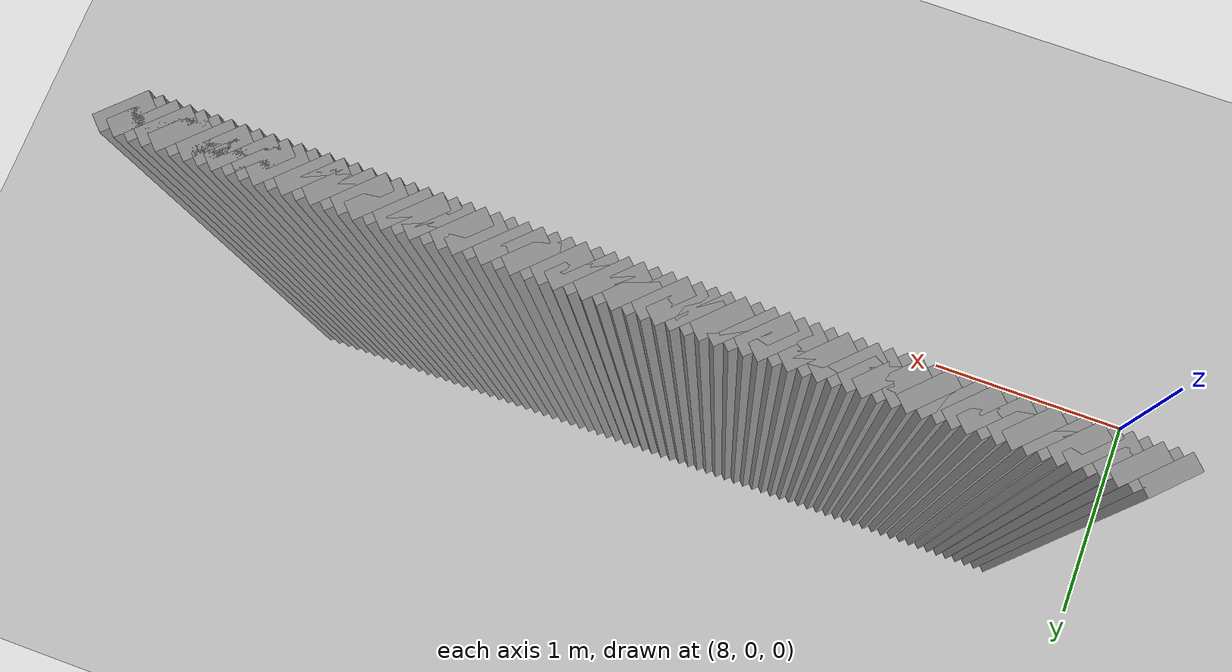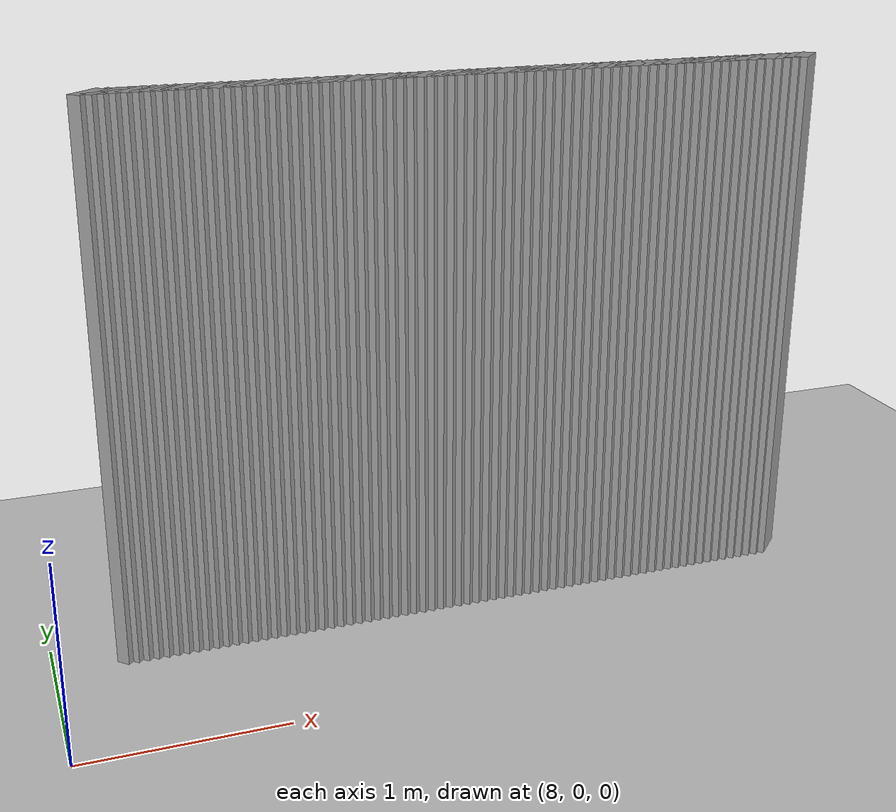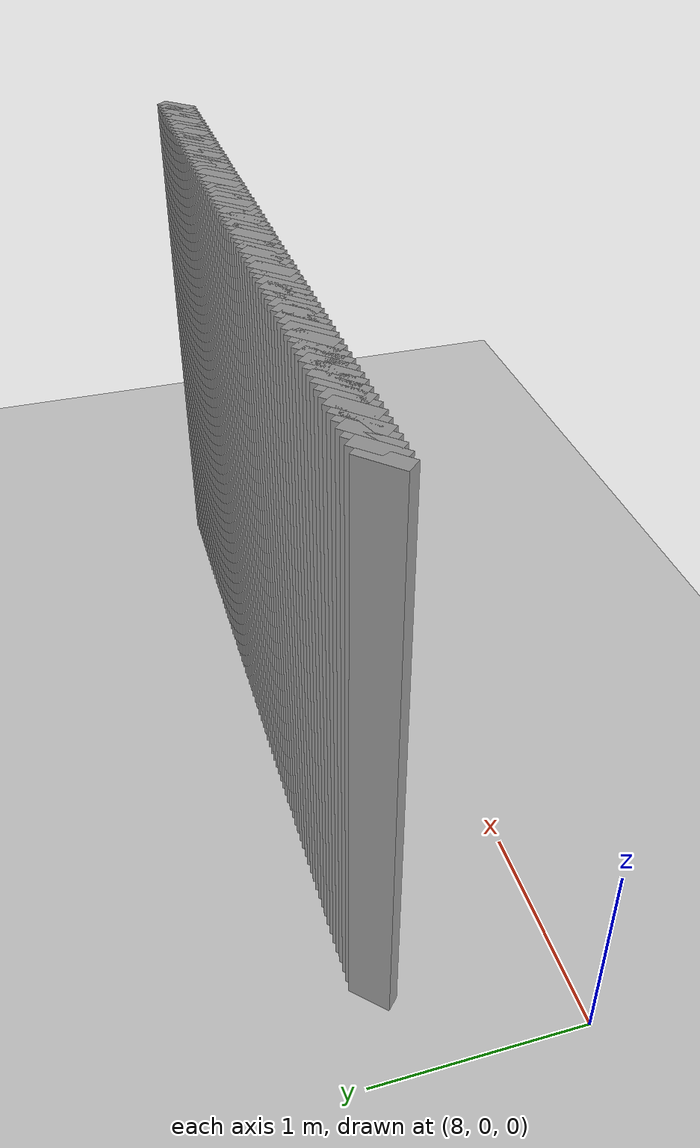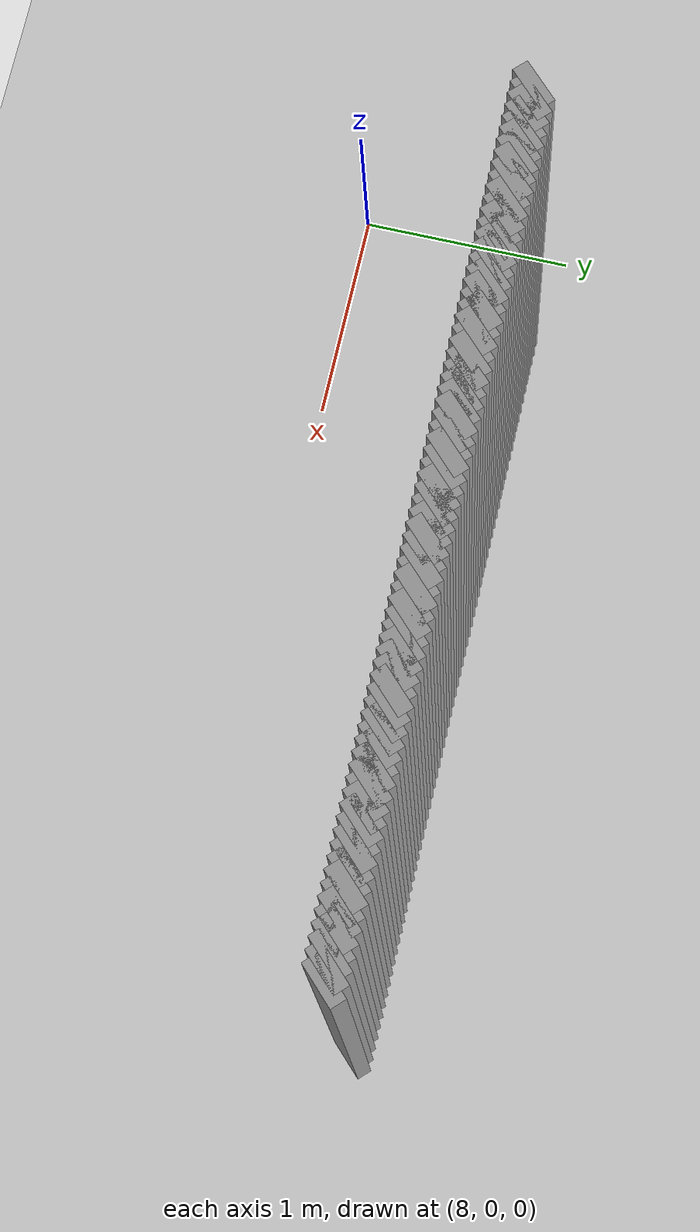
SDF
<sdf version="1.5">
 <world name="default">
  <include><uri>model://ground_plane</uri></include>
  <include><uri>model://sun</uri></include>
  <model name="grey_wall_2736">
   <static>1</static>
   <link name="link">
    <pose>8.4 0.8500000000000001  1.4 0 0 -0.7853981633974416</pose>
    <collision name="collision">
     <geometry><box><size>0.07071067811865529 .2  2.8</size></box></geometry>
    </collision>
    <visual name="visual">
     <cast_shadows>0</cast_shadows>
     <geometry><box><size>0.07071067811865529 .2  2.8</size></box></geometry>
     <material>
      <script>
       <uri>model://grey_wall/materials/scripts</uri>
       <uri>model://grey_wall/materials/textures</uri>
       <name>vrc/grey_wall</name>
      </script>
     </material>
    </visual>
   </link>
  </model>
  <model name="grey_wall_2737">
   <static>1</static>
   <link name="link">
    <pose>8.450000000000001 0.8500000000000001  1.4 0 0 -0.7853981633974416</pose>
    <collision name="collision">
     <geometry><box><size>0.07071067811865529 .2  2.8</size></box></geometry>
    </collision>
    <visual name="visual">
     <cast_shadows>0</cast_shadows>
     <geometry><box><size>0.07071067811865529 .2  2.8</size></box></geometry>
     <material>
      <script>
       <uri>model://grey_wall/materials/scripts</uri>
       <uri>model://grey_wall/materials/textures</uri>
       <name>vrc/grey_wall</name>
      </script>
     </material>
    </visual>
   </link>
  </model>
  <model name="grey_wall_2738">
   <static>1</static>
   <link name="link">
    <pose>8.5 0.8500000000000001  1.4 0 0 -0.7853981633974416</pose>
    <collision name="collision">
     <geometry><box><size>0.07071067811865529 .2  2.8</size></box></geometry>
    </collision>
    <visual name="visual">
     <cast_shadows>0</cast_shadows>
     <geometry><box><size>0.07071067811865529 .2  2.8</size></box></geometry>
     <material>
      <script>
       <uri>model://grey_wall/materials/scripts</uri>
       <uri>model://grey_wall/materials/textures</uri>
       <name>vrc/grey_wall</name>
      </script>
     </material>
    </visual>
   </link>
  </model>
  <model name="grey_wall_2739">
   <static>1</static>
   <link name="link">
    <pose>8.55 0.8500000000000001  1.4 0 0 -0.7853981633974416</pose>
    <collision name="collision">
     <geometry><box><size>0.07071067811865529 .2  2.8</size></box></geometry>
    </collision>
    <visual name="visual">
     <cast_shadows>0</cast_shadows>
     <geometry><box><size>0.07071067811865529 .2  2.8</size></box></geometry>
     <material>
      <script>
       <uri>model://grey_wall/materials/scripts</uri>
       <uri>model://grey_wall/materials/textures</uri>
       <name>vrc/grey_wall</name>
      </script>
     </material>
    </visual>
   </link>
  </model>
  <model name="grey_wall_2740">
   <static>1</static>
   <link name="link">
    <pose>8.6 0.8500000000000001  1.4 0 0 -0.7853981633974416</pose>
    <collision name="collision">
     <geometry><box><size>0.07071067811865529 .2  2.8</size></box></geometry>
    </collision>
    <visual name="visual">
     <cast_shadows>0</cast_shadows>
     <geometry><box><size>0.07071067811865529 .2  2.8</size></box></geometry>
     <material>
      <script>
       <uri>model://grey_wall/materials/scripts</uri>
       <uri>model://grey_wall/materials/textures</uri>
       <name>vrc/grey_wall</name>
      </script>
     </material>
    </visual>
   </link>
  </model>
  <model name="grey_wall_2741">
   <static>1</static>
   <link name="link">
    <pose>8.65 0.8500000000000001  1.4 0 0 -0.7853981633974416</pose>
    <collision name="collision">
     <geometry><box><size>0.07071067811865529 .2  2.8</size></box></geometry>
    </collision>
    <visual name="visual">
     <cast_shadows>0</cast_shadows>
     <geometry><box><size>0.07071067811865529 .2  2.8</size></box></geometry>
     <material>
      <script>
       <uri>model://grey_wall/materials/scripts</uri>
       <uri>model://grey_wall/materials/textures</uri>
       <name>vrc/grey_wall</name>
      </script>
     </material>
    </visual>
   </link>
  </model>
  <model name="grey_wall_2742">
   <static>1</static>
   <link name="link">
    <pose>8.700000000000001 0.8500000000000001  1.4 0 0 -0.7853981633974416</pose>
    <collision name="collision">
     <geometry><box><size>0.07071067811865529 .2  2.8</size></box></geometry>
    </collision>
    <visual name="visual">
     <cast_shadows>0</cast_shadows>
     <geometry><box><size>0.07071067811865529 .2  2.8</size></box></geometry>
     <material>
      <script>
       <uri>model://grey_wall/materials/scripts</uri>
       <uri>model://grey_wall/materials/textures</uri>
       <name>vrc/grey_wall</name>
      </script>
     </material>
    </visual>
   </link>
  </model>
  <model name="grey_wall_2743">
   <static>1</static>
   <link name="link">
    <pose>8.75 0.8500000000000001  1.4 0 0 -0.7853981633974416</pose>
    <collision name="collision">
     <geometry><box><size>0.07071067811865529 .2  2.8</size></box></geometry>
    </collision>
    <visual name="visual">
     <cast_shadows>0</cast_shadows>
     <geometry><box><size>0.07071067811865529 .2  2.8</size></box></geometry>
     <material>
      <script>
       <uri>model://grey_wall/materials/scripts</uri>
       <uri>model://grey_wall/materials/textures</uri>
       <name>vrc/grey_wall</name>
      </script>
     </material>
    </visual>
   </link>
  </model>
  <model name="grey_wall_2744">
   <static>1</static>
   <link name="link">
    <pose>8.8 0.8500000000000001  1.4 0 0 -0.7853981633974416</pose>
    <collision name="collision">
     <geometry><box><size>0.07071067811865529 .2  2.8</size></box></geometry>
    </collision>
    <visual name="visual">
     <cast_shadows>0</cast_shadows>
     <geometry><box><size>0.07071067811865529 .2  2.8</size></box></geometry>
     <material>
      <script>
       <uri>model://grey_wall/materials/scripts</uri>
       <uri>model://grey_wall/materials/textures</uri>
       <name>vrc/grey_wall</name>
      </script>
     </material>
    </visual>
   </link>
  </model>
  <model name="grey_wall_2745">
   <static>1</static>
   <link name="link">
    <pose>8.85 0.8500000000000001  1.4 0 0 -0.7853981633974416</pose>
    <collision name="collision">
     <geometry><box><size>0.07071067811865529 .2  2.8</size></box></geometry>
    </collision>
    <visual name="visual">
     <cast_shadows>0</cast_shadows>
     <geometry><box><size>0.07071067811865529 .2  2.8</size></box></geometry>
     <material>
      <script>
       <uri>model://grey_wall/materials/scripts</uri>
       <uri>model://grey_wall/materials/textures</uri>
       <name>vrc/grey_wall</name>
      </script>
     </material>
    </visual>
   </link>
  </model>
  <model name="grey_wall_2746">
   <static>1</static>
   <link name="link">
    <pose>8.9 0.8500000000000001  1.4 0 0 -0.7853981633974416</pose>
    <collision name="collision">
     <geometry><box><size>0.07071067811865529 .2  2.8</size></box></geometry>
    </collision>
    <visual name="visual">
     <cast_shadows>0</cast_shadows>
     <geometry><box><size>0.07071067811865529 .2  2.8</size></box></geometry>
     <material>
      <script>
       <uri>model://grey_wall/materials/scripts</uri>
       <uri>model://grey_wall/materials/textures</uri>
       <name>vrc/grey_wall</name>
      </script>
     </material>
    </visual>
   </link>
  </model>
  <model name="grey_wall_2747">
   <static>1</static>
   <link name="link">
    <pose>8.950000000000001 0.8500000000000001  1.4 0 0 -0.7853981633974416</pose>
    <collision name="collision">
     <geometry><box><size>0.07071067811865529 .2  2.8</size></box></geometry>
    </collision>
    <visual name="visual">
     <cast_shadows>0</cast_shadows>
     <geometry><box><size>0.07071067811865529 .2  2.8</size></box></geometry>
     <material>
      <script>
       <uri>model://grey_wall/materials/scripts</uri>
       <uri>model://grey_wall/materials/textures</uri>
       <name>vrc/grey_wall</name>
      </script>
     </material>
    </visual>
   </link>
  </model>
  <model name="grey_wall_2748">
   <static>1</static>
   <link name="link">
    <pose>9.0 0.8500000000000001  1.4 0 0 -0.7853981633974416</pose>
    <collision name="collision">
     <geometry><box><size>0.07071067811865529 .2  2.8</size></box></geometry>
    </collision>
    <visual name="visual">
     <cast_shadows>0</cast_shadows>
     <geometry><box><size>0.07071067811865529 .2  2.8</size></box></geometry>
     <material>
      <script>
       <uri>model://grey_wall/materials/scripts</uri>
       <uri>model://grey_wall/materials/textures</uri>
       <name>vrc/grey_wall</name>
      </script>
     </material>
    </visual>
   </link>
  </model>
  <model name="grey_wall_2749">
   <static>1</static>
   <link name="link">
    <pose>9.05 0.8500000000000001  1.4 0 0 -0.7853981633974416</pose>
    <collision name="collision">
     <geometry><box><size>0.07071067811865529 .2  2.8</size></box></geometry>
    </collision>
    <visual name="visual">
     <cast_shadows>0</cast_shadows>
     <geometry><box><size>0.07071067811865529 .2  2.8</size></box></geometry>
     <material>
      <script>
       <uri>model://grey_wall/materials/scripts</uri>
       <uri>model://grey_wall/materials/textures</uri>
       <name>vrc/grey_wall</name>
      </script>
     </material>
    </visual>
   </link>
  </model>
  <model name="grey_wall_2750">
   <static>1</static>
   <link name="link">
    <pose>9.1 0.8500000000000001  1.4 0 0 -0.7853981633974416</pose>
    <collision name="collision">
     <geometry><box><size>0.07071067811865529 .2  2.8</size></box></geometry>
    </collision>
    <visual name="visual">
     <cast_shadows>0</cast_shadows>
     <geometry><box><size>0.07071067811865529 .2  2.8</size></box></geometry>
     <material>
      <script>
       <uri>model://grey_wall/materials/scripts</uri>
       <uri>model://grey_wall/materials/textures</uri>
       <name>vrc/grey_wall</name>
      </script>
     </material>
    </visual>
   </link>
  </model>
  <model name="grey_wall_2751">
   <static>1</static>
   <link name="link">
    <pose>9.15 0.8500000000000001  1.4 0 0 -0.7853981633974416</pose>
    <collision name="collision">
     <geometry><box><size>0.07071067811865529 .2  2.8</size></box></geometry>
    </collision>
    <visual name="visual">
     <cast_shadows>0</cast_shadows>
     <geometry><box><size>0.07071067811865529 .2  2.8</size></box></geometry>
     <material>
      <script>
       <uri>model://grey_wall/materials/scripts</uri>
       <uri>model://grey_wall/materials/textures</uri>
       <name>vrc/grey_wall</name>
      </script>
     </material>
    </visual>
   </link>
  </model>
  <model name="grey_wall_2752">
   <static>1</static>
   <link name="link">
    <pose>9.200000000000001 0.8500000000000001  1.4 0 0 -0.7853981633974416</pose>
    <collision name="collision">
     <geometry><box><size>0.07071067811865529 .2  2.8</size></box></geometry>
    </collision>
    <visual name="visual">
     <cast_shadows>0</cast_shadows>
     <geometry><box><size>0.07071067811865529 .2  2.8</size></box></geometry>
     <material>
      <script>
       <uri>model://grey_wall/materials/scripts</uri>
       <uri>model://grey_wall/materials/textures</uri>
       <name>vrc/grey_wall</name>
      </script>
     </material>
    </visual>
   </link>
  </model>
  <model name="grey_wall_2753">
   <static>1</static>
   <link name="link">
    <pose>9.25 0.8500000000000001  1.4 0 0 -0.7853981633974416</pose>
    <collision name="collision">
     <geometry><box><size>0.07071067811865529 .2  2.8</size></box></geometry>
    </collision>
    <visual name="visual">
     <cast_shadows>0</cast_shadows>
     <geometry><box><size>0.07071067811865529 .2  2.8</size></box></geometry>
     <material>
      <script>
       <uri>model://grey_wall/materials/scripts</uri>
       <uri>model://grey_wall/materials/textures</uri>
       <name>vrc/grey_wall</name>
      </script>
     </material>
    </visual>
   </link>
  </model>
  <model name="grey_wall_2754">
   <static>1</static>
   <link name="link">
    <pose>9.3 0.8500000000000001  1.4 0 0 -0.7853981633974416</pose>
    <collision name="collision">
     <geometry><box><size>0.07071067811865529 .2  2.8</size></box></geometry>
    </collision>
    <visual name="visual">
     <cast_shadows>0</cast_shadows>
     <geometry><box><size>0.07071067811865529 .2  2.8</size></box></geometry>
     <material>
      <script>
       <uri>model://grey_wall/materials/scripts</uri>
       <uri>model://grey_wall/materials/textures</uri>
       <name>vrc/grey_wall</name>
      </script>
     </material>
    </visual>
   </link>
  </model>
  <model name="grey_wall_2755">
   <static>1</static>
   <link name="link">
    <pose>9.35 0.8500000000000001  1.4 0 0 -0.7853981633974416</pose>
    <collision name="collision">
     <geometry><box><size>0.07071067811865529 .2  2.8</size></box></geometry>
    </collision>
    <visual name="visual">
     <cast_shadows>0</cast_shadows>
     <geometry><box><size>0.07071067811865529 .2  2.8</size></box></geometry>
     <material>
      <script>
       <uri>model://grey_wall/materials/scripts</uri>
       <uri>model://grey_wall/materials/textures</uri>
       <name>vrc/grey_wall</name>
      </script>
     </material>
    </visual>
   </link>
  </model>
  <model name="grey_wall_2756">
   <static>1</static>
   <link name="link">
    <pose>9.4 0.8500000000000001  1.4 0 0 -0.7853981633974416</pose>
    <collision name="collision">
     <geometry><box><size>0.07071067811865529 .2  2.8</size></box></geometry>
    </collision>
    <visual name="visual">
     <cast_shadows>0</cast_shadows>
     <geometry><box><size>0.07071067811865529 .2  2.8</size></box></geometry>
     <material>
      <script>
       <uri>model://grey_wall/materials/scripts</uri>
       <uri>model://grey_wall/materials/textures</uri>
       <name>vrc/grey_wall</name>
      </script>
     </material>
    </visual>
   </link>
  </model>
  <model name="grey_wall_2757">
   <static>1</static>
   <link name="link">
    <pose>9.450000000000001 0.8500000000000001  1.4 0 0 -0.7853981633974416</pose>
    <collision name="collision">
     <geometry><box><size>0.07071067811865529 .2  2.8</size></box></geometry>
    </collision>
    <visual name="visual">
     <cast_shadows>0</cast_shadows>
     <geometry><box><size>0.07071067811865529 .2  2.8</size></box></geometry>
     <material>
      <script>
       <uri>model://grey_wall/materials/scripts</uri>
       <uri>model://grey_wall/materials/textures</uri>
       <name>vrc/grey_wall</name>
      </script>
     </material>
    </visual>
   </link>
  </model>
  <model name="grey_wall_2758">
   <static>1</static>
   <link name="link">
    <pose>9.5 0.8500000000000001  1.4 0 0 -0.7853981633974416</pose>
    <collision name="collision">
     <geometry><box><size>0.07071067811865529 .2  2.8</size></box></geometry>
    </collision>
    <visual name="visual">
     <cast_shadows>0</cast_shadows>
     <geometry><box><size>0.07071067811865529 .2  2.8</size></box></geometry>
     <material>
      <script>
       <uri>model://grey_wall/materials/scripts</uri>
       <uri>model://grey_wall/materials/textures</uri>
       <name>vrc/grey_wall</name>
      </script>
     </material>
    </visual>
   </link>
  </model>
  <model name="grey_wall_2759">
   <static>1</static>
   <link name="link">
    <pose>9.55 0.8500000000000001  1.4 0 0 -0.7853981633974416</pose>
    <collision name="collision">
     <geometry><box><size>0.07071067811865529 .2  2.8</size></box></geometry>
    </collision>
    <visual name="visual">
     <cast_shadows>0</cast_shadows>
     <geometry><box><size>0.07071067811865529 .2  2.8</size></box></geometry>
     <material>
      <script>
       <uri>model://grey_wall/materials/scripts</uri>
       <uri>model://grey_wall/materials/textures</uri>
       <name>vrc/grey_wall</name>
      </script>
     </material>
    </visual>
   </link>
  </model>
  <model name="grey_wall_2760">
   <static>1</static>
   <link name="link">
    <pose>9.600000000000001 0.8500000000000001  1.4 0 0 -0.7853981633974416</pose>
    <collision name="collision">
     <geometry><box><size>0.07071067811865529 .2  2.8</size></box></geometry>
    </collision>
    <visual name="visual">
     <cast_shadows>0</cast_shadows>
     <geometry><box><size>0.07071067811865529 .2  2.8</size></box></geometry>
     <material>
      <script>
       <uri>model://grey_wall/materials/scripts</uri>
       <uri>model://grey_wall/materials/textures</uri>
       <name>vrc/grey_wall</name>
      </script>
     </material>
    </visual>
   </link>
  </model>
  <model name="grey_wall_2761">
   <static>1</static>
   <link name="link">
    <pose>9.65 0.8500000000000001  1.4 0 0 -0.7853981633974416</pose>
    <collision name="collision">
     <geometry><box><size>0.07071067811865529 .2  2.8</size></box></geometry>
    </collision>
    <visual name="visual">
     <cast_shadows>0</cast_shadows>
     <geometry><box><size>0.07071067811865529 .2  2.8</size></box></geometry>
     <material>
      <script>
       <uri>model://grey_wall/materials/scripts</uri>
       <uri>model://grey_wall/materials/textures</uri>
       <name>vrc/grey_wall</name>
      </script>
     </material>
    </visual>
   </link>
  </model>
  <model name="grey_wall_2762">
   <static>1</static>
   <link name="link">
    <pose>9.700000000000001 0.8500000000000001  1.4 0 0 -0.7853981633974416</pose>
    <collision name="collision">
     <geometry><box><size>0.07071067811865529 .2  2.8</size></box></geometry>
    </collision>
    <visual name="visual">
     <cast_shadows>0</cast_shadows>
     <geometry><box><size>0.07071067811865529 .2  2.8</size></box></geometry>
     <material>
      <script>
       <uri>model://grey_wall/materials/scripts</uri>
       <uri>model://grey_wall/materials/textures</uri>
       <name>vrc/grey_wall</name>
      </script>
     </material>
    </visual>
   </link>
  </model>
  <model name="grey_wall_2763">
   <static>1</static>
   <link name="link">
    <pose>9.75 0.8500000000000001  1.4 0 0 -0.7853981633974416</pose>
    <collision name="collision">
     <geometry><box><size>0.07071067811865529 .2  2.8</size></box></geometry>
    </collision>
    <visual name="visual">
     <cast_shadows>0</cast_shadows>
     <geometry><box><size>0.07071067811865529 .2  2.8</size></box></geometry>
     <material>
      <script>
       <uri>model://grey_wall/materials/scripts</uri>
       <uri>model://grey_wall/materials/textures</uri>
       <name>vrc/grey_wall</name>
      </script>
     </material>
    </visual>
   </link>
  </model>
  <model name="grey_wall_2764">
   <static>1</static>
   <link name="link">
    <pose>9.8 0.8500000000000001  1.4 0 0 -0.7853981633974416</pose>
    <collision name="collision">
     <geometry><box><size>0.07071067811865529 .2  2.8</size></box></geometry>
    </collision>
    <visual name="visual">
     <cast_shadows>0</cast_shadows>
     <geometry><box><size>0.07071067811865529 .2  2.8</size></box></geometry>
     <material>
      <script>
       <uri>model://grey_wall/materials/scripts</uri>
       <uri>model://grey_wall/materials/textures</uri>
       <name>vrc/grey_wall</name>
      </script>
     </material>
    </visual>
   </link>
  </model>
  <model name="grey_wall_2765">
   <static>1</static>
   <link name="link">
    <pose>9.850000000000001 0.8500000000000001  1.4 0 0 -0.7853981633974416</pose>
    <collision name="collision">
     <geometry><box><size>0.07071067811865529 .2  2.8</size></box></geometry>
    </collision>
    <visual name="visual">
     <cast_shadows>0</cast_shadows>
     <geometry><box><size>0.07071067811865529 .2  2.8</size></box></geometry>
     <material>
      <script>
       <uri>model://grey_wall/materials/scripts</uri>
       <uri>model://grey_wall/materials/textures</uri>
       <name>vrc/grey_wall</name>
      </script>
     </material>
    </visual>
   </link>
  </model>
  <model name="grey_wall_2766">
   <static>1</static>
   <link name="link">
    <pose>9.9 0.8500000000000001  1.4 0 0 -0.7853981633974416</pose>
    <collision name="collision">
     <geometry><box><size>0.07071067811865529 .2  2.8</size></box></geometry>
    </collision>
    <visual name="visual">
     <cast_shadows>0</cast_shadows>
     <geometry><box><size>0.07071067811865529 .2  2.8</size></box></geometry>
     <material>
      <script>
       <uri>model://grey_wall/materials/scripts</uri>
       <uri>model://grey_wall/materials/textures</uri>
       <name>vrc/grey_wall</name>
      </script>
     </material>
    </visual>
   </link>
  </model>
  <model name="grey_wall_2767">
   <static>1</static>
   <link name="link">
    <pose>9.950000000000001 0.8500000000000001  1.4 0 0 -0.7853981633974416</pose>
    <collision name="collision">
     <geometry><box><size>0.07071067811865529 .2  2.8</size></box></geometry>
    </collision>
    <visual name="visual">
     <cast_shadows>0</cast_shadows>
     <geometry><box><size>0.07071067811865529 .2  2.8</size></box></geometry>
     <material>
      <script>
       <uri>model://grey_wall/materials/scripts</uri>
       <uri>model://grey_wall/materials/textures</uri>
       <name>vrc/grey_wall</name>
      </script>
     </material>
    </visual>
   </link>
  </model>
  <model name="grey_wall_2768">
   <static>1</static>
   <link name="link">
    <pose>10.0 0.8500000000000001  1.4 0 0 -0.7853981633974416</pose>
    <collision name="collision">
     <geometry><box><size>0.07071067811865529 .2  2.8</size></box></geometry>
    </collision>
    <visual name="visual">
     <cast_shadows>0</cast_shadows>
     <geometry><box><size>0.07071067811865529 .2  2.8</size></box></geometry>
     <material>
      <script>
       <uri>model://grey_wall/materials/scripts</uri>
       <uri>model://grey_wall/materials/textures</uri>
       <name>vrc/grey_wall</name>
      </script>
     </material>
    </visual>
   </link>
  </model>
  <model name="grey_wall_2769">
   <static>1</static>
   <link name="link">
    <pose>10.05 0.8500000000000001  1.4 0 0 -0.7853981633974416</pose>
    <collision name="collision">
     <geometry><box><size>0.07071067811865529 .2  2.8</size></box></geometry>
    </collision>
    <visual name="visual">
     <cast_shadows>0</cast_shadows>
     <geometry><box><size>0.07071067811865529 .2  2.8</size></box></geometry>
     <material>
      <script>
       <uri>model://grey_wall/materials/scripts</uri>
       <uri>model://grey_wall/materials/textures</uri>
       <name>vrc/grey_wall</name>
      </script>
     </material>
    </visual>
   </link>
  </model>
  <model name="grey_wall_2770">
   <static>1</static>
   <link name="link">
    <pose>10.100000000000001 0.8500000000000001  1.4 0 0 -0.7853981633974416</pose>
    <collision name="collision">
     <geometry><box><size>0.07071067811865529 .2  2.8</size></box></geometry>
    </collision>
    <visual name="visual">
     <cast_shadows>0</cast_shadows>
     <geometry><box><size>0.07071067811865529 .2  2.8</size></box></geometry>
     <material>
      <script>
       <uri>model://grey_wall/materials/scripts</uri>
       <uri>model://grey_wall/materials/textures</uri>
       <name>vrc/grey_wall</name>
      </script>
     </material>
    </visual>
   </link>
  </model>
  <model name="grey_wall_2771">
   <static>1</static>
   <link name="link">
    <pose>10.15 0.8500000000000001  1.4 0 0 -0.7853981633974416</pose>
    <collision name="collision">
     <geometry><box><size>0.07071067811865529 .2  2.8</size></box></geometry>
    </collision>
    <visual name="visual">
     <cast_shadows>0</cast_shadows>
     <geometry><box><size>0.07071067811865529 .2  2.8</size></box></geometry>
     <material>
      <script>
       <uri>model://grey_wall/materials/scripts</uri>
       <uri>model://grey_wall/materials/textures</uri>
       <name>vrc/grey_wall</name>
      </script>
     </material>
    </visual>
   </link>
  </model>
  <model name="grey_wall_2772">
   <static>1</static>
   <link name="link">
    <pose>10.200000000000001 0.8500000000000001  1.4 0 0 -0.7853981633974416</pose>
    <collision name="collision">
     <geometry><box><size>0.07071067811865529 .2  2.8</size></box></geometry>
    </collision>
    <visual name="visual">
     <cast_shadows>0</cast_shadows>
     <geometry><box><size>0.07071067811865529 .2  2.8</size></box></geometry>
     <material>
      <script>
       <uri>model://grey_wall/materials/scripts</uri>
       <uri>model://grey_wall/materials/textures</uri>
       <name>vrc/grey_wall</name>
      </script>
     </material>
    </visual>
   </link>
  </model>
  <model name="grey_wall_2773">
   <static>1</static>
   <link name="link">
    <pose>10.25 0.8500000000000001  1.4 0 0 -0.7853981633974416</pose>
    <collision name="collision">
     <geometry><box><size>0.07071067811865529 .2  2.8</size></box></geometry>
    </collision>
    <visual name="visual">
     <cast_shadows>0</cast_shadows>
     <geometry><box><size>0.07071067811865529 .2  2.8</size></box></geometry>
     <material>
      <script>
       <uri>model://grey_wall/materials/scripts</uri>
       <uri>model://grey_wall/materials/textures</uri>
       <name>vrc/grey_wall</name>
      </script>
     </material>
    </visual>
   </link>
  </model>
  <model name="grey_wall_2774">
   <static>1</static>
   <link name="link">
    <pose>10.3 0.8500000000000001  1.4 0 0 -0.7853981633974416</pose>
    <collision name="collision">
     <geometry><box><size>0.07071067811865529 .2  2.8</size></box></geometry>
    </collision>
    <visual name="visual">
     <cast_shadows>0</cast_shadows>
     <geometry><box><size>0.07071067811865529 .2  2.8</size></box></geometry>
     <material>
      <script>
       <uri>model://grey_wall/materials/scripts</uri>
       <uri>model://grey_wall/materials/textures</uri>
       <name>vrc/grey_wall</name>
      </script>
     </material>
    </visual>
   </link>
  </model>
  <model name="grey_wall_2775">
   <static>1</static>
   <link name="link">
    <pose>10.350000000000001 0.8500000000000001  1.4 0 0 -0.7853981633974416</pose>
    <collision name="collision">
     <geometry><box><size>0.07071067811865529 .2  2.8</size></box></geometry>
    </collision>
    <visual name="visual">
     <cast_shadows>0</cast_shadows>
     <geometry><box><size>0.07071067811865529 .2  2.8</size></box></geometry>
     <material>
      <script>
       <uri>model://grey_wall/materials/scripts</uri>
       <uri>model://grey_wall/materials/textures</uri>
       <name>vrc/grey_wall</name>
      </script>
     </material>
    </visual>
   </link>
  </model>
  <model name="grey_wall_2776">
   <static>1</static>
   <link name="link">
    <pose>10.4 0.8500000000000001  1.4 0 0 -0.7853981633974416</pose>
    <collision name="collision">
     <geometry><box><size>0.07071067811865529 .2  2.8</size></box></geometry>
    </collision>
    <visual name="visual">
     <cast_shadows>0</cast_shadows>
     <geometry><box><size>0.07071067811865529 .2  2.8</size></box></geometry>
     <material>
      <script>
       <uri>model://grey_wall/materials/scripts</uri>
       <uri>model://grey_wall/materials/textures</uri>
       <name>vrc/grey_wall</name>
      </script>
     </material>
    </visual>
   </link>
  </model>
  <model name="grey_wall_2777">
   <static>1</static>
   <link name="link">
    <pose>10.450000000000001 0.8500000000000001  1.4 0 0 -0.7853981633974416</pose>
    <collision name="collision">
     <geometry><box><size>0.07071067811865529 .2  2.8</size></box></geometry>
    </collision>
    <visual name="visual">
     <cast_shadows>0</cast_shadows>
     <geometry><box><size>0.07071067811865529 .2  2.8</size></box></geometry>
     <material>
      <script>
       <uri>model://grey_wall/materials/scripts</uri>
       <uri>model://grey_wall/materials/textures</uri>
       <name>vrc/grey_wall</name>
      </script>
     </material>
    </visual>
   </link>
  </model>
  <model name="grey_wall_2778">
   <static>1</static>
   <link name="link">
    <pose>10.5 0.8500000000000001  1.4 0 0 -0.7853981633974416</pose>
    <collision name="collision">
     <geometry><box><size>0.07071067811865529 .2  2.8</size></box></geometry>
    </collision>
    <visual name="visual">
     <cast_shadows>0</cast_shadows>
     <geometry><box><size>0.07071067811865529 .2  2.8</size></box></geometry>
     <material>
      <script>
       <uri>model://grey_wall/materials/scripts</uri>
       <uri>model://grey_wall/materials/textures</uri>
       <name>vrc/grey_wall</name>
      </script>
     </material>
    </visual>
   </link>
  </model>
  <model name="grey_wall_2779">
   <static>1</static>
   <link name="link">
    <pose>10.55 0.8500000000000001  1.4 0 0 -0.7853981633974416</pose>
    <collision name="collision">
     <geometry><box><size>0.07071067811865529 .2  2.8</size></box></geometry>
    </collision>
    <visual name="visual">
     <cast_shadows>0</cast_shadows>
     <geometry><box><size>0.07071067811865529 .2  2.8</size></box></geometry>
     <material>
      <script>
       <uri>model://grey_wall/materials/scripts</uri>
       <uri>model://grey_wall/materials/textures</uri>
       <name>vrc/grey_wall</name>
      </script>
     </material>
    </visual>
   </link>
  </model>
  <model name="grey_wall_2780">
   <static>1</static>
   <link name="link">
    <pose>10.600000000000001 0.8500000000000001  1.4 0 0 -0.7853981633974416</pose>
    <collision name="collision">
     <geometry><box><size>0.07071067811865529 .2  2.8</size></box></geometry>
    </collision>
    <visual name="visual">
     <cast_shadows>0</cast_shadows>
     <geometry><box><size>0.07071067811865529 .2  2.8</size></box></geometry>
     <material>
      <script>
       <uri>model://grey_wall/materials/scripts</uri>
       <uri>model://grey_wall/materials/textures</uri>
       <name>vrc/grey_wall</name>
      </script>
     </material>
    </visual>
   </link>
  </model>
  <model name="grey_wall_2781">
   <static>1</static>
   <link name="link">
    <pose>10.65 0.8500000000000001  1.4 0 0 -0.7853981633974416</pose>
    <collision name="collision">
     <geometry><box><size>0.07071067811865529 .2  2.8</size></box></geometry>
    </collision>
    <visual name="visual">
     <cast_shadows>0</cast_shadows>
     <geometry><box><size>0.07071067811865529 .2  2.8</size></box></geometry>
     <material>
      <script>
       <uri>model://grey_wall/materials/scripts</uri>
       <uri>model://grey_wall/materials/textures</uri>
       <name>vrc/grey_wall</name>
      </script>
     </material>
    </visual>
   </link>
  </model>
  <model name="grey_wall_2782">
   <static>1</static>
   <link name="link">
    <pose>10.700000000000001 0.8500000000000001  1.4 0 0 -0.7853981633974416</pose>
    <collision name="collision">
     <geometry><box><size>0.07071067811865529 .2  2.8</size></box></geometry>
    </collision>
    <visual name="visual">
     <cast_shadows>0</cast_shadows>
     <geometry><box><size>0.07071067811865529 .2  2.8</size></box></geometry>
     <material>
      <script>
       <uri>model://grey_wall/materials/scripts</uri>
       <uri>model://grey_wall/materials/textures</uri>
       <name>vrc/grey_wall</name>
      </script>
     </material>
    </visual>
   </link>
  </model>
  <model name="grey_wall_2783">
   <static>1</static>
   <link name="link">
    <pose>10.75 0.8500000000000001  1.4 0 0 -0.7853981633974416</pose>
    <collision name="collision">
     <geometry><box><size>0.07071067811865529 .2  2.8</size></box></geometry>
    </collision>
    <visual name="visual">
     <cast_shadows>0</cast_shadows>
     <geometry><box><size>0.07071067811865529 .2  2.8</size></box></geometry>
     <material>
      <script>
       <uri>model://grey_wall/materials/scripts</uri>
       <uri>model://grey_wall/materials/textures</uri>
       <name>vrc/grey_wall</name>
      </script>
     </material>
    </visual>
   </link>
  </model>
  <model name="grey_wall_2784">
   <static>1</static>
   <link name="link">
    <pose>10.8 0.8500000000000001  1.4 0 0 -0.7853981633974416</pose>
    <collision name="collision">
     <geometry><box><size>0.07071067811865529 .2  2.8</size></box></geometry>
    </collision>
    <visual name="visual">
     <cast_shadows>0</cast_shadows>
     <geometry><box><size>0.07071067811865529 .2  2.8</size></box></geometry>
     <material>
      <script>
       <uri>model://grey_wall/materials/scripts</uri>
       <uri>model://grey_wall/materials/textures</uri>
       <name>vrc/grey_wall</name>
      </script>
     </material>
    </visual>
   </link>
  </model>
  <model name="grey_wall_2785">
   <static>1</static>
   <link name="link">
    <pose>10.850000000000001 0.8500000000000001  1.4 0 0 -0.7853981633974416</pose>
    <collision name="collision">
     <geometry><box><size>0.07071067811865529 .2  2.8</size></box></geometry>
    </collision>
    <visual name="visual">
     <cast_shadows>0</cast_shadows>
     <geometry><box><size>0.07071067811865529 .2  2.8</size></box></geometry>
     <material>
      <script>
       <uri>model://grey_wall/materials/scripts</uri>
       <uri>model://grey_wall/materials/textures</uri>
       <name>vrc/grey_wall</name>
      </script>
     </material>
    </visual>
   </link>
  </model>
  <model name="grey_wall_2786">
   <static>1</static>
   <link name="link">
    <pose>10.9 0.8500000000000001  1.4 0 0 -0.7853981633974416</pose>
    <collision name="collision">
     <geometry><box><size>0.07071067811865529 .2  2.8</size></box></geometry>
    </collision>
    <visual name="visual">
     <cast_shadows>0</cast_shadows>
     <geometry><box><size>0.07071067811865529 .2  2.8</size></box></geometry>
     <material>
      <script>
       <uri>model://grey_wall/materials/scripts</uri>
       <uri>model://grey_wall/materials/textures</uri>
       <name>vrc/grey_wall</name>
      </script>
     </material>
    </visual>
   </link>
  </model>
  <model name="grey_wall_2787">
   <static>1</static>
   <link name="link">
    <pose>10.950000000000001 0.8500000000000001  1.4 0 0 -0.7853981633974416</pose>
    <collision name="collision">
     <geometry><box><size>0.07071067811865529 .2  2.8</size></box></geometry>
    </collision>
    <visual name="visual">
     <cast_shadows>0</cast_shadows>
     <geometry><box><size>0.07071067811865529 .2  2.8</size></box></geometry>
     <material>
      <script>
       <uri>model://grey_wall/materials/scripts</uri>
       <uri>model://grey_wall/materials/textures</uri>
       <name>vrc/grey_wall</name>
      </script>
     </material>
    </visual>
   </link>
  </model>
  <model name="grey_wall_2788">
   <static>1</static>
   <link name="link">
    <pose>11.0 0.8500000000000001  1.4 0 0 -0.7853981633974416</pose>
    <collision name="collision">
     <geometry><box><size>0.07071067811865529 .2  2.8</size></box></geometry>
    </collision>
    <visual name="visual">
     <cast_shadows>0</cast_shadows>
     <geometry><box><size>0.07071067811865529 .2  2.8</size></box></geometry>
     <material>
      <script>
       <uri>model://grey_wall/materials/scripts</uri>
       <uri>model://grey_wall/materials/textures</uri>
       <name>vrc/grey_wall</name>
      </script>
     </material>
    </visual>
   </link>
  </model>
  <model name="grey_wall_2789">
   <static>1</static>
   <link name="link">
    <pose>11.05 0.8500000000000001  1.4 0 0 -0.7853981633974416</pose>
    <collision name="collision">
     <geometry><box><size>0.07071067811865529 .2  2.8</size></box></geometry>
    </collision>
    <visual name="visual">
     <cast_shadows>0</cast_shadows>
     <geometry><box><size>0.07071067811865529 .2  2.8</size></box></geometry>
     <material>
      <script>
       <uri>model://grey_wall/materials/scripts</uri>
       <uri>model://grey_wall/materials/textures</uri>
       <name>vrc/grey_wall</name>
      </script>
     </material>
    </visual>
   </link>
  </model>
  <model name="grey_wall_2790">
   <static>1</static>
   <link name="link">
    <pose>11.100000000000001 0.8500000000000001  1.4 0 0 -0.7853981633974416</pose>
    <collision name="collision">
     <geometry><box><size>0.07071067811865529 .2  2.8</size></box></geometry>
    </collision>
    <visual name="visual">
     <cast_shadows>0</cast_shadows>
     <geometry><box><size>0.07071067811865529 .2  2.8</size></box></geometry>
     <material>
      <script>
       <uri>model://grey_wall/materials/scripts</uri>
       <uri>model://grey_wall/materials/textures</uri>
       <name>vrc/grey_wall</name>
      </script>
     </material>
    </visual>
   </link>
  </model>
  <model name="grey_wall_2791">
   <static>1</static>
   <link name="link">
    <pose>11.15 0.8500000000000001  1.4 0 0 -0.7853981633974416</pose>
    <collision name="collision">
     <geometry><box><size>0.07071067811865529 .2  2.8</size></box></geometry>
    </collision>
    <visual name="visual">
     <cast_shadows>0</cast_shadows>
     <geometry><box><size>0.07071067811865529 .2  2.8</size></box></geometry>
     <material>
      <script>
       <uri>model://grey_wall/materials/scripts</uri>
       <uri>model://grey_wall/materials/textures</uri>
       <name>vrc/grey_wall</name>
      </script>
     </material>
    </visual>
   </link>
  </model>
  <model name="grey_wall_2792">
   <static>1</static>
   <link name="link">
    <pose>11.200000000000001 0.8500000000000001  1.4 0 0 -0.7853981633974416</pose>
    <collision name="collision">
     <geometry><box><size>0.07071067811865529 .2  2.8</size></box></geometry>
    </collision>
    <visual name="visual">
     <cast_shadows>0</cast_shadows>
     <geometry><box><size>0.07071067811865529 .2  2.8</size></box></geometry>
     <material>
      <script>
       <uri>model://grey_wall/materials/scripts</uri>
       <uri>model://grey_wall/materials/textures</uri>
       <name>vrc/grey_wall</name>
      </script>
     </material>
    </visual>
   </link>
  </model>
  <model name="grey_wall_2793">
   <static>1</static>
   <link name="link">
    <pose>11.25 0.8500000000000001  1.4 0 0 -0.7853981633974416</pose>
    <collision name="collision">
     <geometry><box><size>0.07071067811865529 .2  2.8</size></box></geometry>
    </collision>
    <visual name="visual">
     <cast_shadows>0</cast_shadows>
     <geometry><box><size>0.07071067811865529 .2  2.8</size></box></geometry>
     <material>
      <script>
       <uri>model://grey_wall/materials/scripts</uri>
       <uri>model://grey_wall/materials/textures</uri>
       <name>vrc/grey_wall</name>
      </script>
     </material>
    </visual>
   </link>
  </model>
  <model name="grey_wall_2794">
   <static>1</static>
   <link name="link">
    <pose>11.3 0.8500000000000001  1.4 0 0 -0.7853981633974416</pose>
    <collision name="collision">
     <geometry><box><size>0.07071067811865529 .2  2.8</size></box></geometry>
    </collision>
    <visual name="visual">
     <cast_shadows>0</cast_shadows>
     <geometry><box><size>0.07071067811865529 .2  2.8</size></box></geometry>
     <material>
      <script>
       <uri>model://grey_wall/materials/scripts</uri>
       <uri>model://grey_wall/materials/textures</uri>
       <name>vrc/grey_wall</name>
      </script>
     </material>
    </visual>
   </link>
  </model>
  <model name="grey_wall_2795">
   <static>1</static>
   <link name="link">
    <pose>11.350000000000001 0.8500000000000001  1.4 0 0 -0.7853981633974416</pose>
    <collision name="collision">
     <geometry><box><size>0.07071067811865529 .2  2.8</size></box></geometry>
    </collision>
    <visual name="visual">
     <cast_shadows>0</cast_shadows>
     <geometry><box><size>0.07071067811865529 .2  2.8</size></box></geometry>
     <material>
      <script>
       <uri>model://grey_wall/materials/scripts</uri>
       <uri>model://grey_wall/materials/textures</uri>
       <name>vrc/grey_wall</name>
      </script>
     </material>
    </visual>
   </link>
  </model>
  <model name="grey_wall_2796">
   <static>1</static>
   <link name="link">
    <pose>11.4 0.8500000000000001  1.4 0 0 -0.7853981633974416</pose>
    <collision name="collision">
     <geometry><box><size>0.07071067811865529 .2  2.8</size></box></geometry>
    </collision>
    <visual name="visual">
     <cast_shadows>0</cast_shadows>
     <geometry><box><size>0.07071067811865529 .2  2.8</size></box></geometry>
     <material>
      <script>
       <uri>model://grey_wall/materials/scripts</uri>
       <uri>model://grey_wall/materials/textures</uri>
       <name>vrc/grey_wall</name>
      </script>
     </material>
    </visual>
   </link>
  </model>
  <model name="grey_wall_2797">
   <static>1</static>
   <link name="link">
    <pose>11.450000000000001 0.8500000000000001  1.4 0 0 -0.7853981633974416</pose>
    <collision name="collision">
     <geometry><box><size>0.07071067811865529 .2  2.8</size></box></geometry>
    </collision>
    <visual name="visual">
     <cast_shadows>0</cast_shadows>
     <geometry><box><size>0.07071067811865529 .2  2.8</size></box></geometry>
     <material>
      <script>
       <uri>model://grey_wall/materials/scripts</uri>
       <uri>model://grey_wall/materials/textures</uri>
       <name>vrc/grey_wall</name>
      </script>
     </material>
    </visual>
   </link>
  </model>
  <model name="grey_wall_2798">
   <static>1</static>
   <link name="link">
    <pose>11.5 0.8500000000000001  1.4 0 0 -0.7853981633974416</pose>
    <collision name="collision">
     <geometry><box><size>0.07071067811865529 .2  2.8</size></box></geometry>
    </collision>
    <visual name="visual">
     <cast_shadows>0</cast_shadows>
     <geometry><box><size>0.07071067811865529 .2  2.8</size></box></geometry>
     <material>
      <script>
       <uri>model://grey_wall/materials/scripts</uri>
       <uri>model://grey_wall/materials/textures</uri>
       <name>vrc/grey_wall</name>
      </script>
     </material>
    </visual>
   </link>
  </model>
  <model name="grey_wall_2799">
   <static>1</static>
   <link name="link">
    <pose>11.55 0.8500000000000001  1.4 0 0 -0.7853981633974416</pose>
    <collision name="collision">
     <geometry><box><size>0.07071067811865529 .2  2.8</size></box></geometry>
    </collision>
    <visual name="visual">
     <cast_shadows>0</cast_shadows>
     <geometry><box><size>0.07071067811865529 .2  2.8</size></box></geometry>
     <material>
      <script>
       <uri>model://grey_wall/materials/scripts</uri>
       <uri>model://grey_wall/materials/textures</uri>
       <name>vrc/grey_wall</name>
      </script>
     </material>
    </visual>
   </link>
  </model>
  <model name="grey_wall_2800">
   <static>1</static>
   <link name="link">
    <pose>11.600000000000001 0.8500000000000001  1.4 0 0 -0.7853981633974416</pose>
    <collision name="collision">
     <geometry><box><size>0.07071067811865529 .2  2.8</size></box></geometry>
    </collision>
    <visual name="visual">
     <cast_shadows>0</cast_shadows>
     <geometry><box><size>0.07071067811865529 .2  2.8</size></box></geometry>
     <material>
      <script>
       <uri>model://grey_wall/materials/scripts</uri>
       <uri>model://grey_wall/materials/textures</uri>
       <name>vrc/grey_wall</name>
      </script>
     </material>
    </visual>
   </link>
  </model>
  <model name="grey_wall_2801">
   <static>1</static>
   <link name="link">
    <pose>11.65 0.8500000000000001  1.4 0 0 -0.7853981633974416</pose>
    <collision name="collision">
     <geometry><box><size>0.07071067811865529 .2  2.8</size></box></geometry>
    </collision>
    <visual name="visual">
     <cast_shadows>0</cast_shadows>
     <geometry><box><size>0.07071067811865529 .2  2.8</size></box></geometry>
     <material>
      <script>
       <uri>model://grey_wall/materials/scripts</uri>
       <uri>model://grey_wall/materials/textures</uri>
       <name>vrc/grey_wall</name>
      </script>
     </material>
    </visual>
   </link>
  </model>
  <model name="grey_wall_2802">
   <static>1</static>
   <link name="link">
    <pose>11.700000000000001 0.8500000000000001  1.4 0 0 -0.7853981633974416</pose>
    <collision name="collision">
     <geometry><box><size>0.07071067811865529 .2  2.8</size></box></geometry>
    </collision>
    <visual name="visual">
     <cast_shadows>0</cast_shadows>
     <geometry><box><size>0.07071067811865529 .2  2.8</size></box></geometry>
     <material>
      <script>
       <uri>model://grey_wall/materials/scripts</uri>
       <uri>model://grey_wall/materials/textures</uri>
       <name>vrc/grey_wall</name>
      </script>
     </material>
    </visual>
   </link>
  </model>
  <model name="grey_wall_2803">
   <static>1</static>
   <link name="link">
    <pose>11.75 0.8500000000000001  1.4 0 0 -0.7853981633974416</pose>
    <collision name="collision">
     <geometry><box><size>0.07071067811865529 .2  2.8</size></box></geometry>
    </collision>
    <visual name="visual">
     <cast_shadows>0</cast_shadows>
     <geometry><box><size>0.07071067811865529 .2  2.8</size></box></geometry>
     <material>
      <script>
       <uri>model://grey_wall/materials/scripts</uri>
       <uri>model://grey_wall/materials/textures</uri>
       <name>vrc/grey_wall</name>
      </script>
     </material>
    </visual>
   </link>
  </model>
  <model name="grey_wall_2804">
   <static>1</static>
   <link name="link">
    <pose>11.8 0.8500000000000001  1.4 0 0 -0.7853981633974416</pose>
    <collision name="collision">
     <geometry><box><size>0.07071067811865529 .2  2.8</size></box></geometry>
    </collision>
    <visual name="visual">
     <cast_shadows>0</cast_shadows>
     <geometry><box><size>0.07071067811865529 .2  2.8</size></box></geometry>
     <material>
      <script>
       <uri>model://grey_wall/materials/scripts</uri>
       <uri>model://grey_wall/materials/textures</uri>
       <name>vrc/grey_wall</name>
      </script>
     </material>
    </visual>
   </link>
  </model>
  <model name="grey_wall_2805">
   <static>1</static>
   <link name="link">
    <pose>11.850000000000001 0.8500000000000001  1.4 0 0 -0.7853981633974416</pose>
    <collision name="collision">
     <geometry><box><size>0.07071067811865529 .2  2.8</size></box></geometry>
    </collision>
    <visual name="visual">
     <cast_shadows>0</cast_shadows>
     <geometry><box><size>0.07071067811865529 .2  2.8</size></box></geometry>
     <material>
      <script>
       <uri>model://grey_wall/materials/scripts</uri>
       <uri>model://grey_wall/materials/textures</uri>
       <name>vrc/grey_wall</name>
      </script>
     </material>
    </visual>
   </link>
  </model>
  <model name="grey_wall_2806">
   <static>1</static>
   <link name="link">
    <pose>11.9 0.8500000000000001  1.4 0 0 -0.7853981633974416</pose>
    <collision name="collision">
     <geometry><box><size>0.07071067811865529 .2  2.8</size></box></geometry>
    </collision>
    <visual name="visual">
     <cast_shadows>0</cast_shadows>
     <geometry><box><size>0.07071067811865529 .2  2.8</size></box></geometry>
     <material>
      <script>
       <uri>model://grey_wall/materials/scripts</uri>
       <uri>model://grey_wall/materials/textures</uri>
       <name>vrc/grey_wall</name>
      </script>
     </material>
    </visual>
   </link>
  </model>
  <model name="grey_wall_2807">
   <static>1</static>
   <link name="link">
    <pose>11.950000000000001 0.8500000000000001  1.4 0 0 -0.7853981633974416</pose>
    <collision name="collision">
     <geometry><box><size>0.07071067811865529 .2  2.8</size></box></geometry>
    </collision>
    <visual name="visual">
     <cast_shadows>0</cast_shadows>
     <geometry><box><size>0.07071067811865529 .2  2.8</size></box></geometry>
     <material>
      <script>
       <uri>model://grey_wall/materials/scripts</uri>
       <uri>model://grey_wall/materials/textures</uri>
       <name>vrc/grey_wall</name>
      </script>
     </material>
    </visual>
   </link>
  </model>
  <model name="grey_wall_2808">
   <static>1</static>
   <link name="link">
    <pose>12.0 0.8500000000000001  1.4 0 0 -0.7853981633974416</pose>
    <collision name="collision">
     <geometry><box><size>0.07071067811865529 .2  2.8</size></box></geometry>
    </collision>
    <visual name="visual">
     <cast_shadows>0</cast_shadows>
     <geometry><box><size>0.07071067811865529 .2  2.8</size></box></geometry>
     <material>
      <script>
       <uri>model://grey_wall/materials/scripts</uri>
       <uri>model://grey_wall/materials/textures</uri>
       <name>vrc/grey_wall</name>
      </script>
     </material>
    </visual>
   </link>
  </model>
 </world>
</sdf>
